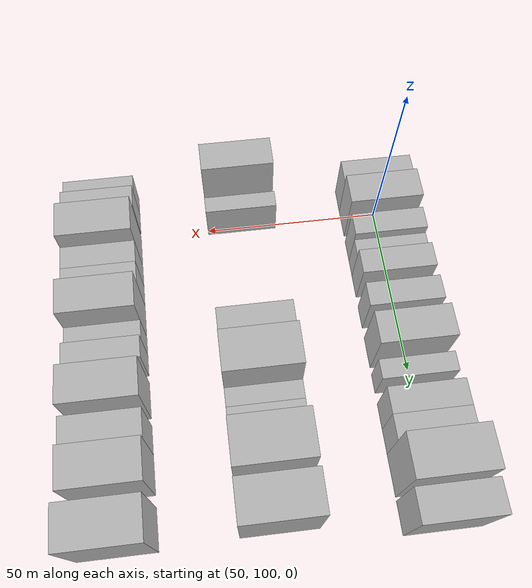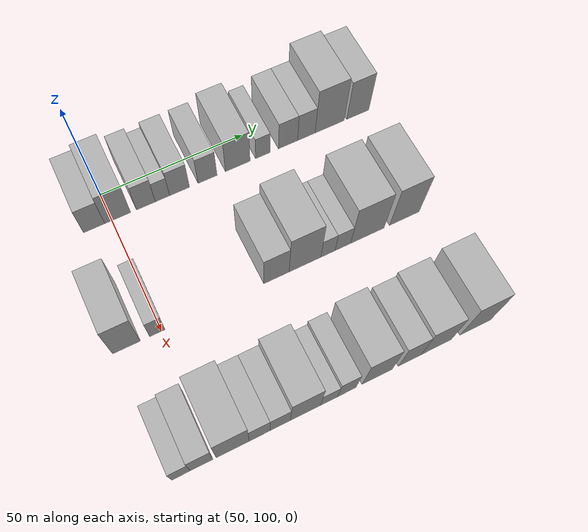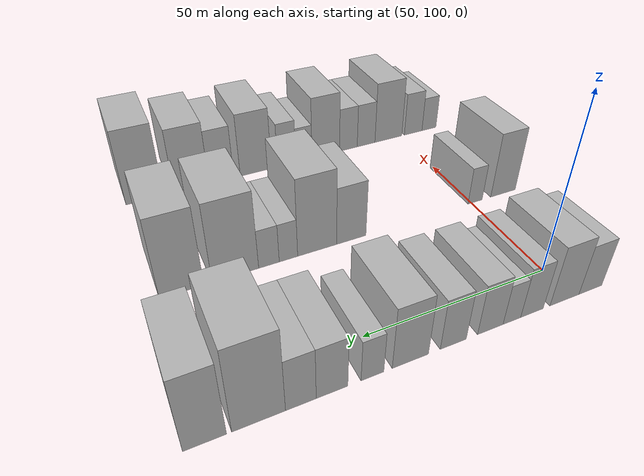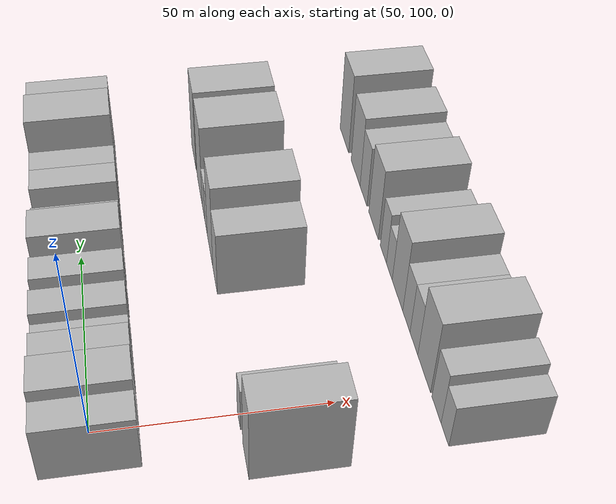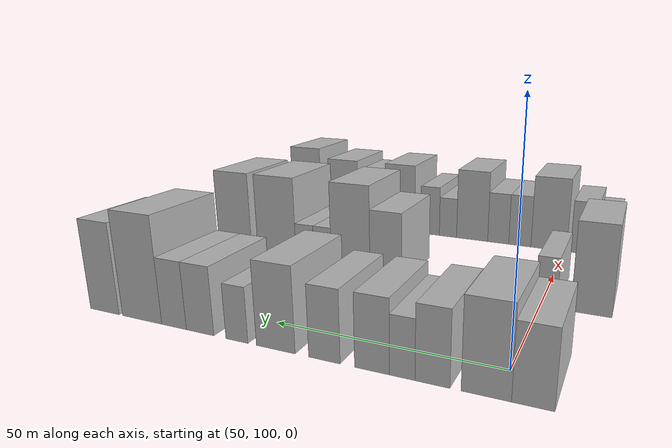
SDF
<sdf version="1.6">
 <world name="default">
  <model name="building_55">
   <static>1</static>
   <pose>50.0000 94.0495 0 0.000000 0.000000 0.000000</pose>
   <link name="link">
    <pose>0 0 7.50 0 0 0</pose>
    <collision name="collision"><geometry><box><size>20.0000 7.1074 15.0000</size></box></geometry></collision>
    <visual name="visual">
     <cast_shadows>0</cast_shadows>
     <geometry><box><size>20.0000 7.1074 15.0000</size></box></geometry>
     <material>
      <script>
       <uri>model://HANNAS_wall/materials/scripts</uri>
       <uri>model://HANNAS_wall/materials/textures</uri>
       <name>vrc/HANNAS_wall</name>
      </script>
     </material>
    </visual>
   </link>
  </model>
  <model name="building_56">
   <static>1</static>
   <pose>50.0000 101.9663 0 0.000000 0.000000 0.000000</pose>
   <link name="link">
    <pose>0 0 9.00 0 0 0</pose>
    <collision name="collision"><geometry><box><size>20.0000 8.7262 18.0000</size></box></geometry></collision>
    <visual name="visual">
     <cast_shadows>0</cast_shadows>
     <geometry><box><size>20.0000 8.7262 18.0000</size></box></geometry>
     <material>
      <script>
       <uri>model://HANNAS_wall/materials/scripts</uri>
       <uri>model://HANNAS_wall/materials/textures</uri>
       <name>vrc/HANNAS_wall</name>
      </script>
     </material>
    </visual>
   </link>
  </model>
  <model name="building_57">
   <static>1</static>
   <pose>50.0000 111.5632 0 0.000000 0.000000 0.000000</pose>
   <link name="link">
    <pose>0 0 7.50 0 0 0</pose>
    <collision name="collision"><geometry><box><size>20.0000 6.4676 15.0000</size></box></geometry></collision>
    <visual name="visual">
     <cast_shadows>0</cast_shadows>
     <geometry><box><size>20.0000 6.4676 15.0000</size></box></geometry>
     <material>
      <script>
       <uri>model://HANNAS_wall/materials/scripts</uri>
       <uri>model://HANNAS_wall/materials/textures</uri>
       <name>vrc/HANNAS_wall</name>
      </script>
     </material>
    </visual>
   </link>
  </model>
  <model name="building_58">
   <static>1</static>
   <pose>50.0000 117.2710 0 0.000000 0.000000 0.000000</pose>
   <link name="link">
    <pose>0 0 6.00 0 0 0</pose>
    <collision name="collision"><geometry><box><size>20.0000 4.9481 12.0000</size></box></geometry></collision>
    <visual name="visual">
     <cast_shadows>0</cast_shadows>
     <geometry><box><size>20.0000 4.9481 12.0000</size></box></geometry>
     <material>
      <script>
       <uri>model://HANNAS_wall/materials/scripts</uri>
       <uri>model://HANNAS_wall/materials/textures</uri>
       <name>vrc/HANNAS_wall</name>
      </script>
     </material>
    </visual>
   </link>
  </model>
  <model name="building_59">
   <static>1</static>
   <pose>50.0000 123.2092 0 0.000000 0.000000 0.000000</pose>
   <link name="link">
    <pose>0 0 7.50 0 0 0</pose>
    <collision name="collision"><geometry><box><size>20.0000 6.9283 15.0000</size></box></geometry></collision>
    <visual name="visual">
     <cast_shadows>0</cast_shadows>
     <geometry><box><size>20.0000 6.9283 15.0000</size></box></geometry>
     <material>
      <script>
       <uri>model://HANNAS_wall/materials/scripts</uri>
       <uri>model://HANNAS_wall/materials/textures</uri>
       <name>vrc/HANNAS_wall</name>
      </script>
     </material>
    </visual>
   </link>
  </model>
  <model name="building_60">
   <static>1</static>
   <pose>50.0000 133.0297 0 0.000000 0.000000 0.000000</pose>
   <link name="link">
    <pose>0 0 7.50 0 0 0</pose>
    <collision name="collision"><geometry><box><size>20.0000 6.7127 15.0000</size></box></geometry></collision>
    <visual name="visual">
     <cast_shadows>0</cast_shadows>
     <geometry><box><size>20.0000 6.7127 15.0000</size></box></geometry>
     <material>
      <script>
       <uri>model://HANNAS_wall/materials/scripts</uri>
       <uri>model://HANNAS_wall/materials/textures</uri>
       <name>vrc/HANNAS_wall</name>
      </script>
     </material>
    </visual>
   </link>
  </model>
  <model name="building_61">
   <static>1</static>
   <pose>50.0000 143.8145 0 0.000000 0.000000 0.000000</pose>
   <link name="link">
    <pose>0 0 9.00 0 0 0</pose>
    <collision name="collision"><geometry><box><size>20.0000 8.8569 18.0000</size></box></geometry></collision>
    <visual name="visual">
     <cast_shadows>0</cast_shadows>
     <geometry><box><size>20.0000 8.8569 18.0000</size></box></geometry>
     <material>
      <script>
       <uri>model://HANNAS_wall/materials/scripts</uri>
       <uri>model://HANNAS_wall/materials/textures</uri>
       <name>vrc/HANNAS_wall</name>
      </script>
     </material>
    </visual>
   </link>
  </model>
  <model name="building_62">
   <static>1</static>
   <pose>50.0000 152.9021 0 0.000000 0.000000 0.000000</pose>
   <link name="link">
    <pose>0 0 6.00 0 0 0</pose>
    <collision name="collision"><geometry><box><size>20.0000 5.3185 12.0000</size></box></geometry></collision>
    <visual name="visual">
     <cast_shadows>0</cast_shadows>
     <geometry><box><size>20.0000 5.3185 12.0000</size></box></geometry>
     <material>
      <script>
       <uri>model://HANNAS_wall/materials/scripts</uri>
       <uri>model://HANNAS_wall/materials/textures</uri>
       <name>vrc/HANNAS_wall</name>
      </script>
     </material>
    </visual>
   </link>
  </model>
  <model name="building_63">
   <static>1</static>
   <pose>50.0000 162.0678 0 0.000000 0.000000 0.000000</pose>
   <link name="link">
    <pose>0 0 7.50 0 0 0</pose>
    <collision name="collision"><geometry><box><size>20.0000 7.0128 15.0000</size></box></geometry></collision>
    <visual name="visual">
     <cast_shadows>0</cast_shadows>
     <geometry><box><size>20.0000 7.0128 15.0000</size></box></geometry>
     <material>
      <script>
       <uri>model://HANNAS_wall/materials/scripts</uri>
       <uri>model://HANNAS_wall/materials/textures</uri>
       <name>vrc/HANNAS_wall</name>
      </script>
     </material>
    </visual>
   </link>
  </model>
  <model name="building_64">
   <static>1</static>
   <pose>50.0000 168.8523 0 0.000000 0.000000 0.000000</pose>
   <link name="link">
    <pose>0 0 7.50 0 0 0</pose>
    <collision name="collision"><geometry><box><size>20.0000 6.5562 15.0000</size></box></geometry></collision>
    <visual name="visual">
     <cast_shadows>0</cast_shadows>
     <geometry><box><size>20.0000 6.5562 15.0000</size></box></geometry>
     <material>
      <script>
       <uri>model://HANNAS_wall/materials/scripts</uri>
       <uri>model://HANNAS_wall/materials/textures</uri>
       <name>vrc/HANNAS_wall</name>
      </script>
     </material>
    </visual>
   </link>
  </model>
  <model name="building_65">
   <static>1</static>
   <pose>50.0000 177.6040 0 0.000000 0.000000 0.000000</pose>
   <link name="link">
    <pose>0 0 12.00 0 0 0</pose>
    <collision name="collision"><geometry><box><size>20.0000 10.9473 24.0000</size></box></geometry></collision>
    <visual name="visual">
     <cast_shadows>0</cast_shadows>
     <geometry><box><size>20.0000 10.9473 24.0000</size></box></geometry>
     <material>
      <script>
       <uri>model://HANNAS_wall/materials/scripts</uri>
       <uri>model://HANNAS_wall/materials/textures</uri>
       <name>vrc/HANNAS_wall</name>
      </script>
     </material>
    </visual>
   </link>
  </model>
  <model name="building_66">
   <static>1</static>
   <pose>50.0000 188.2882 0 0.000000 0.000000 0.000000</pose>
   <link name="link">
    <pose>0 0 10.50 0 0 0</pose>
    <collision name="collision"><geometry><box><size>20.0000 8.4212 21.0000</size></box></geometry></collision>
    <visual name="visual">
     <cast_shadows>0</cast_shadows>
     <geometry><box><size>20.0000 8.4212 21.0000</size></box></geometry>
     <material>
      <script>
       <uri>model://HANNAS_wall/materials/scripts</uri>
       <uri>model://HANNAS_wall/materials/textures</uri>
       <name>vrc/HANNAS_wall</name>
      </script>
     </material>
    </visual>
   </link>
  </model>
  <model name="building_137">
   <static>1</static>
   <pose>90.0000 88.8736 0 0.000000 0.000000 0.000000</pose>
   <link name="link">
    <pose>0 0 10.50 0 0 0</pose>
    <collision name="collision"><geometry><box><size>20.0000 8.7078 21.0000</size></box></geometry></collision>
    <visual name="visual">
     <cast_shadows>0</cast_shadows>
     <geometry><box><size>20.0000 8.7078 21.0000</size></box></geometry>
     <material>
      <script>
       <uri>model://HANNAS_wall/materials/scripts</uri>
       <uri>model://HANNAS_wall/materials/textures</uri>
       <name>vrc/HANNAS_wall</name>
      </script>
     </material>
    </visual>
   </link>
  </model>
  <model name="building_138">
   <static>1</static>
   <pose>90.0000 98.6593 0 0.000000 0.000000 0.000000</pose>
   <link name="link">
    <pose>0 0 6.00 0 0 0</pose>
    <collision name="collision"><geometry><box><size>20.0000 4.8636 12.0000</size></box></geometry></collision>
    <visual name="visual">
     <cast_shadows>0</cast_shadows>
     <geometry><box><size>20.0000 4.8636 12.0000</size></box></geometry>
     <material>
      <script>
       <uri>model://HANNAS_wall/materials/scripts</uri>
       <uri>model://HANNAS_wall/materials/textures</uri>
       <name>vrc/HANNAS_wall</name>
      </script>
     </material>
    </visual>
   </link>
  </model>
  <model name="building_139">
   <static>1</static>
   <pose>90.0000 137.9759 0 0.000000 0.000000 0.000000</pose>
   <link name="link">
    <pose>0 0 9.00 0 0 0</pose>
    <collision name="collision"><geometry><box><size>20.0000 8.5899 18.0000</size></box></geometry></collision>
    <visual name="visual">
     <cast_shadows>0</cast_shadows>
     <geometry><box><size>20.0000 8.5899 18.0000</size></box></geometry>
     <material>
      <script>
       <uri>model://HANNAS_wall/materials/scripts</uri>
       <uri>model://HANNAS_wall/materials/textures</uri>
       <name>vrc/HANNAS_wall</name>
      </script>
     </material>
    </visual>
   </link>
  </model>
  <model name="building_140">
   <static>1</static>
   <pose>90.0000 147.7442 0 0.000000 0.000000 0.000000</pose>
   <link name="link">
    <pose>0 0 12.00 0 0 0</pose>
    <collision name="collision"><geometry><box><size>20.0000 10.9467 24.0000</size></box></geometry></collision>
    <visual name="visual">
     <cast_shadows>0</cast_shadows>
     <geometry><box><size>20.0000 10.9467 24.0000</size></box></geometry>
     <material>
      <script>
       <uri>model://HANNAS_wall/materials/scripts</uri>
       <uri>model://HANNAS_wall/materials/textures</uri>
       <name>vrc/HANNAS_wall</name>
      </script>
     </material>
    </visual>
   </link>
  </model>
  <model name="building_141">
   <static>1</static>
   <pose>90.0000 155.7214 0 0.000000 0.000000 0.000000</pose>
   <link name="link">
    <pose>0 0 6.00 0 0 0</pose>
    <collision name="collision"><geometry><box><size>20.0000 5.0077 12.0000</size></box></geometry></collision>
    <visual name="visual">
     <cast_shadows>0</cast_shadows>
     <geometry><box><size>20.0000 5.0077 12.0000</size></box></geometry>
     <material>
      <script>
       <uri>model://HANNAS_wall/materials/scripts</uri>
       <uri>model://HANNAS_wall/materials/textures</uri>
       <name>vrc/HANNAS_wall</name>
      </script>
     </material>
    </visual>
   </link>
  </model>
  <model name="building_142">
   <static>1</static>
   <pose>90.0000 160.9526 0 0.000000 0.000000 0.000000</pose>
   <link name="link">
    <pose>0 0 6.00 0 0 0</pose>
    <collision name="collision"><geometry><box><size>20.0000 5.4547 12.0000</size></box></geometry></collision>
    <visual name="visual">
     <cast_shadows>0</cast_shadows>
     <geometry><box><size>20.0000 5.4547 12.0000</size></box></geometry>
     <material>
      <script>
       <uri>model://HANNAS_wall/materials/scripts</uri>
       <uri>model://HANNAS_wall/materials/textures</uri>
       <name>vrc/HANNAS_wall</name>
      </script>
     </material>
    </visual>
   </link>
  </model>
  <model name="building_143">
   <static>1</static>
   <pose>90.0000 169.6423 0 0.000000 0.000000 0.000000</pose>
   <link name="link">
    <pose>0 0 12.00 0 0 0</pose>
    <collision name="collision"><geometry><box><size>20.0000 11.9247 24.0000</size></box></geometry></collision>
    <visual name="visual">
     <cast_shadows>0</cast_shadows>
     <geometry><box><size>20.0000 11.9247 24.0000</size></box></geometry>
     <material>
      <script>
       <uri>model://HANNAS_wall/materials/scripts</uri>
       <uri>model://HANNAS_wall/materials/textures</uri>
       <name>vrc/HANNAS_wall</name>
      </script>
     </material>
    </visual>
   </link>
  </model>
  <model name="building_144">
   <static>1</static>
   <pose>90.0000 182.9786 0 0.000000 0.000000 0.000000</pose>
   <link name="link">
    <pose>0 0 12.00 0 0 0</pose>
    <collision name="collision"><geometry><box><size>20.0000 10.7478 24.0000</size></box></geometry></collision>
    <visual name="visual">
     <cast_shadows>0</cast_shadows>
     <geometry><box><size>20.0000 10.7478 24.0000</size></box></geometry>
     <material>
      <script>
       <uri>model://HANNAS_wall/materials/scripts</uri>
       <uri>model://HANNAS_wall/materials/textures</uri>
       <name>vrc/HANNAS_wall</name>
      </script>
     </material>
    </visual>
   </link>
  </model>
  <model name="building_218">
   <static>1</static>
   <pose>130.0000 88.8991 0 0.000000 0.000000 0.000000</pose>
   <link name="link">
    <pose>0 0 6.00 0 0 0</pose>
    <collision name="collision"><geometry><box><size>20.0000 5.5369 12.0000</size></box></geometry></collision>
    <visual name="visual">
     <cast_shadows>0</cast_shadows>
     <geometry><box><size>20.0000 5.5369 12.0000</size></box></geometry>
     <material>
      <script>
       <uri>model://HANNAS_wall/materials/scripts</uri>
       <uri>model://HANNAS_wall/materials/textures</uri>
       <name>vrc/HANNAS_wall</name>
      </script>
     </material>
    </visual>
   </link>
  </model>
  <model name="building_219">
   <static>1</static>
   <pose>130.0000 95.0795 0 0.000000 0.000000 0.000000</pose>
   <link name="link">
    <pose>0 0 7.50 0 0 0</pose>
    <collision name="collision"><geometry><box><size>20.0000 6.8240 15.0000</size></box></geometry></collision>
    <visual name="visual">
     <cast_shadows>0</cast_shadows>
     <geometry><box><size>20.0000 6.8240 15.0000</size></box></geometry>
     <material>
      <script>
       <uri>model://HANNAS_wall/materials/scripts</uri>
       <uri>model://HANNAS_wall/materials/textures</uri>
       <name>vrc/HANNAS_wall</name>
      </script>
     </material>
    </visual>
   </link>
  </model>
  <model name="building_220">
   <static>1</static>
   <pose>130.0000 104.5497 0 0.000000 0.000000 0.000000</pose>
   <link name="link">
    <pose>0 0 10.50 0 0 0</pose>
    <collision name="collision"><geometry><box><size>20.0000 10.1163 21.0000</size></box></geometry></collision>
    <visual name="visual">
     <cast_shadows>0</cast_shadows>
     <geometry><box><size>20.0000 10.1163 21.0000</size></box></geometry>
     <material>
      <script>
       <uri>model://HANNAS_wall/materials/scripts</uri>
       <uri>model://HANNAS_wall/materials/textures</uri>
       <name>vrc/HANNAS_wall</name>
      </script>
     </material>
    </visual>
   </link>
  </model>
  <model name="building_221">
   <static>1</static>
   <pose>130.0000 112.8505 0 0.000000 0.000000 0.000000</pose>
   <link name="link">
    <pose>0 0 7.50 0 0 0</pose>
    <collision name="collision"><geometry><box><size>20.0000 6.4853 15.0000</size></box></geometry></collision>
    <visual name="visual">
     <cast_shadows>0</cast_shadows>
     <geometry><box><size>20.0000 6.4853 15.0000</size></box></geometry>
     <material>
      <script>
       <uri>model://HANNAS_wall/materials/scripts</uri>
       <uri>model://HANNAS_wall/materials/textures</uri>
       <name>vrc/HANNAS_wall</name>
      </script>
     </material>
    </visual>
   </link>
  </model>
  <model name="building_222">
   <static>1</static>
   <pose>130.0000 119.2485 0 0.000000 0.000000 0.000000</pose>
   <link name="link">
    <pose>0 0 7.50 0 0 0</pose>
    <collision name="collision"><geometry><box><size>20.0000 6.3108 15.0000</size></box></geometry></collision>
    <visual name="visual">
     <cast_shadows>0</cast_shadows>
     <geometry><box><size>20.0000 6.3108 15.0000</size></box></geometry>
     <material>
      <script>
       <uri>model://HANNAS_wall/materials/scripts</uri>
       <uri>model://HANNAS_wall/materials/textures</uri>
       <name>vrc/HANNAS_wall</name>
      </script>
     </material>
    </visual>
   </link>
  </model>
  <model name="building_223">
   <static>1</static>
   <pose>130.0000 127.2197 0 0.000000 0.000000 0.000000</pose>
   <link name="link">
    <pose>0 0 10.50 0 0 0</pose>
    <collision name="collision"><geometry><box><size>20.0000 9.6317 21.0000</size></box></geometry></collision>
    <visual name="visual">
     <cast_shadows>0</cast_shadows>
     <geometry><box><size>20.0000 9.6317 21.0000</size></box></geometry>
     <material>
      <script>
       <uri>model://HANNAS_wall/materials/scripts</uri>
       <uri>model://HANNAS_wall/materials/textures</uri>
       <name>vrc/HANNAS_wall</name>
      </script>
     </material>
    </visual>
   </link>
  </model>
  <model name="building_224">
   <static>1</static>
   <pose>130.0000 134.7914 0 0.000000 0.000000 0.000000</pose>
   <link name="link">
    <pose>0 0 6.00 0 0 0</pose>
    <collision name="collision"><geometry><box><size>20.0000 5.5116 12.0000</size></box></geometry></collision>
    <visual name="visual">
     <cast_shadows>0</cast_shadows>
     <geometry><box><size>20.0000 5.5116 12.0000</size></box></geometry>
     <material>
      <script>
       <uri>model://HANNAS_wall/materials/scripts</uri>
       <uri>model://HANNAS_wall/materials/textures</uri>
       <name>vrc/HANNAS_wall</name>
      </script>
     </material>
    </visual>
   </link>
  </model>
  <model name="building_225">
   <static>1</static>
   <pose>130.0000 140.5669 0 0.000000 0.000000 0.000000</pose>
   <link name="link">
    <pose>0 0 7.50 0 0 0</pose>
    <collision name="collision"><geometry><box><size>20.0000 6.0395 15.0000</size></box></geometry></collision>
    <visual name="visual">
     <cast_shadows>0</cast_shadows>
     <geometry><box><size>20.0000 6.0395 15.0000</size></box></geometry>
     <material>
      <script>
       <uri>model://HANNAS_wall/materials/scripts</uri>
       <uri>model://HANNAS_wall/materials/textures</uri>
       <name>vrc/HANNAS_wall</name>
      </script>
     </material>
    </visual>
   </link>
  </model>
  <model name="building_226">
   <static>1</static>
   <pose>130.0000 150.5720 0 0.000000 0.000000 0.000000</pose>
   <link name="link">
    <pose>0 0 10.50 0 0 0</pose>
    <collision name="collision"><geometry><box><size>20.0000 9.9707 21.0000</size></box></geometry></collision>
    <visual name="visual">
     <cast_shadows>0</cast_shadows>
     <geometry><box><size>20.0000 9.9707 21.0000</size></box></geometry>
     <material>
      <script>
       <uri>model://HANNAS_wall/materials/scripts</uri>
       <uri>model://HANNAS_wall/materials/textures</uri>
       <name>vrc/HANNAS_wall</name>
      </script>
     </material>
    </visual>
   </link>
  </model>
  <model name="building_227">
   <static>1</static>
   <pose>130.0000 161.3771 0 0.000000 0.000000 0.000000</pose>
   <link name="link">
    <pose>0 0 9.00 0 0 0</pose>
    <collision name="collision"><geometry><box><size>20.0000 7.6395 18.0000</size></box></geometry></collision>
    <visual name="visual">
     <cast_shadows>0</cast_shadows>
     <geometry><box><size>20.0000 7.6395 18.0000</size></box></geometry>
     <material>
      <script>
       <uri>model://HANNAS_wall/materials/scripts</uri>
       <uri>model://HANNAS_wall/materials/textures</uri>
       <name>vrc/HANNAS_wall</name>
      </script>
     </material>
    </visual>
   </link>
  </model>
  <model name="building_228">
   <static>1</static>
   <pose>130.0000 170.4038 0 0.000000 0.000000 0.000000</pose>
   <link name="link">
    <pose>0 0 10.50 0 0 0</pose>
    <collision name="collision"><geometry><box><size>20.0000 10.4138 21.0000</size></box></geometry></collision>
    <visual name="visual">
     <cast_shadows>0</cast_shadows>
     <geometry><box><size>20.0000 10.4138 21.0000</size></box></geometry>
     <material>
      <script>
       <uri>model://HANNAS_wall/materials/scripts</uri>
       <uri>model://HANNAS_wall/materials/textures</uri>
       <name>vrc/HANNAS_wall</name>
      </script>
     </material>
    </visual>
   </link>
  </model>
  <model name="building_229">
   <static>1</static>
   <pose>130.0000 183.9599 0 0.000000 0.000000 0.000000</pose>
   <link name="link">
    <pose>0 0 12.00 0 0 0</pose>
    <collision name="collision"><geometry><box><size>20.0000 10.6985 24.0000</size></box></geometry></collision>
    <visual name="visual">
     <cast_shadows>0</cast_shadows>
     <geometry><box><size>20.0000 10.6985 24.0000</size></box></geometry>
     <material>
      <script>
       <uri>model://HANNAS_wall/materials/scripts</uri>
       <uri>model://HANNAS_wall/materials/textures</uri>
       <name>vrc/HANNAS_wall</name>
      </script>
     </material>
    </visual>
   </link>
  </model>
 </world>
</sdf>
